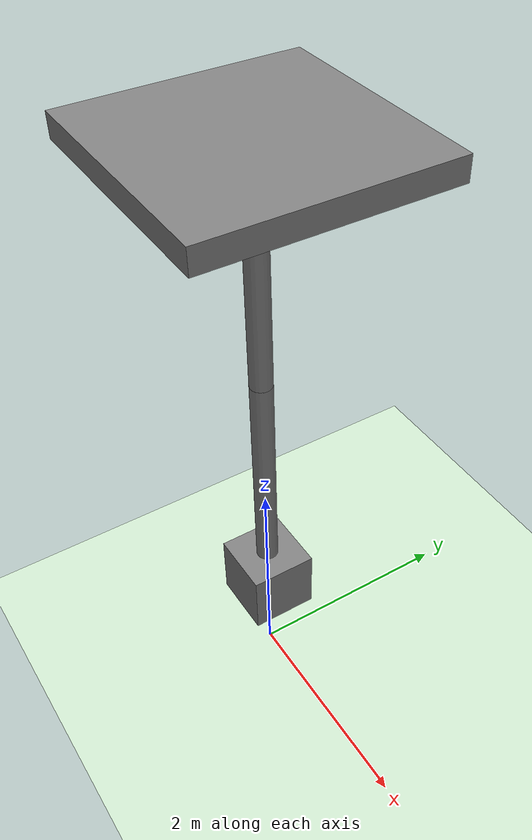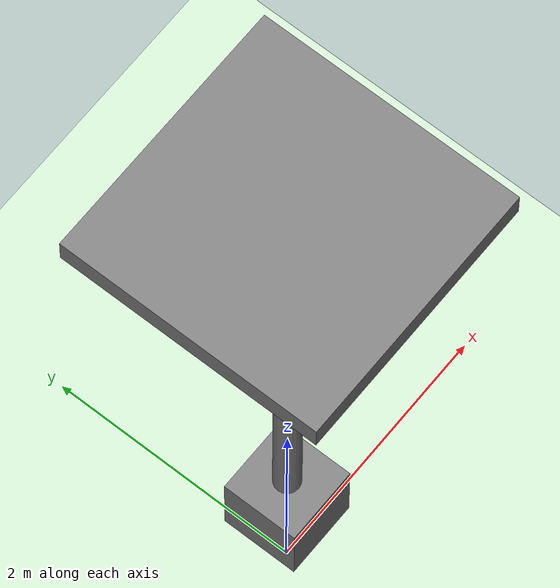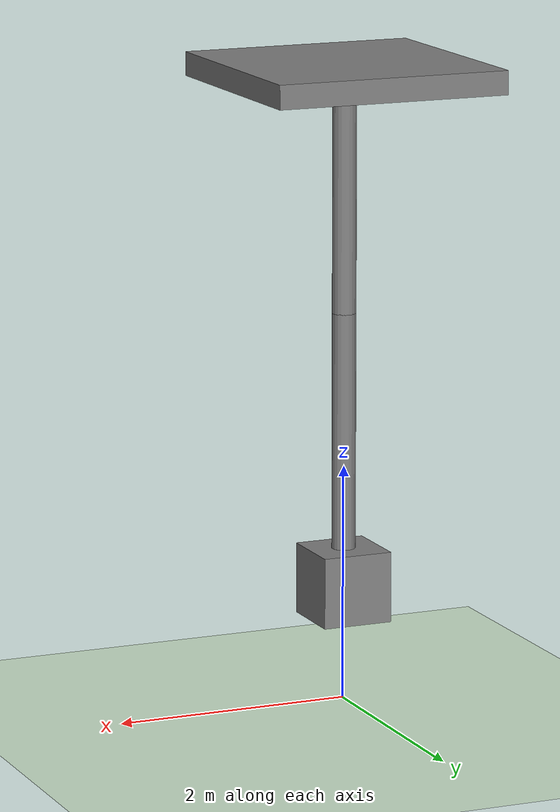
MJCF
<mujoco model="tensegrity default scene">
  <compiler angle="degree" coordinate="local" inertiafromgeom="true" autolimits="true" />
  <option integrator="RK4" timestep="0.01" gravity="0 0 -9.81" />

  <statistic center="0 0 .3" extent="1.2" />

    <asset>
    <texture builtin="gradient" height="100" rgb1="1 1 1" rgb2="0 0 0" type="skybox" width="100" />
    <texture builtin="flat" height="1278" mark="cross" markrgb="1 1 1" name="texgeom" random="0.01" rgb1="0.8 0.6 0.4" rgb2="0.8 0.6 0.4" type="cube" width="127" />
    <texture builtin="checker" height="100" name="texplane" rgb1="0 0 0" rgb2="0.8 0.8 0.8" type="2d" width="100" />
    <material name="MatPlane" reflectance="0.5" shininess="1" specular="1" texrepeat="60 60" texture="texplane" />
    <material name="geom" texture="texgeom" texuniform="true" />
  </asset>

  <worldbody>
    <light cutoff="100" diffuse="1 1 1" dir="-0 0 -1.3" directional="true" exponent="1" pos="0 0 1.3" specular=".1 .1 .1" />
    <geom conaffinity="1" condim="3" material="MatPlane" name="floor" pos="0 0 0" rgba="0.8 0.9 0.8 1" size="40 40 40" type="plane" />
  </worldbody>

<include file="DanceRobot.xml" /></mujoco>

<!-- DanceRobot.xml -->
<mujoco>
  <worldbody>
    <body pos="0 0 1">
        <joint type="free"/>
        <geom type="box" size="0.3 0.3 0.3"/>
        <body pos="0 0 0.3">
            <joint axis="1 0 0"/>
            <joint axis="0 1 0"/>
            <joint axis="0 0 1"/>
            <geom type="capsule" size="0.1" fromto="0 0 0  0 0 2"/>
            <body pos="0 0 2">
                <joint axis="1 0 0"/>
                <joint axis="0 1 0"/>
                <joint axis="0 0 1"/>
                <geom type="capsule" size="0.1" fromto="0 0 0  0 0 2"/>
                <body pos="0 0 2">
                    <joint axis="1 0 0"/>
                    <joint axis="0 1 0"/>
                    <joint axis="0 0 1"/>
                    <geom type="box" size="1 1 0.1"/>
                </body>
            </body>
        </body>

    </body>
  </worldbody>

</mujoco>
